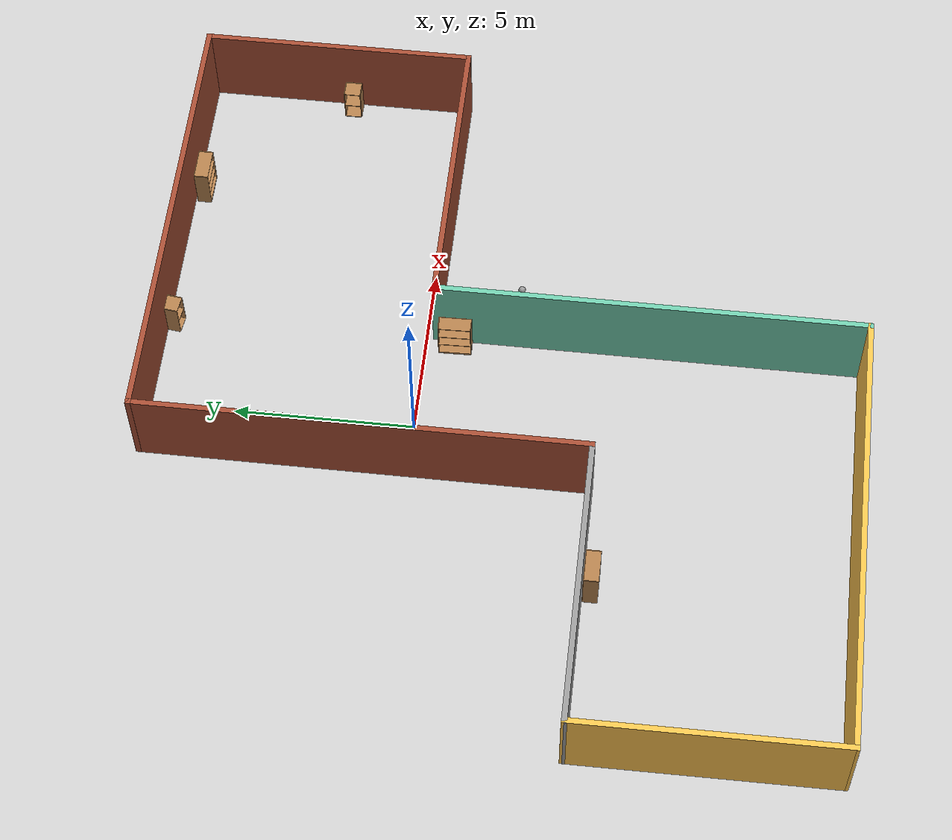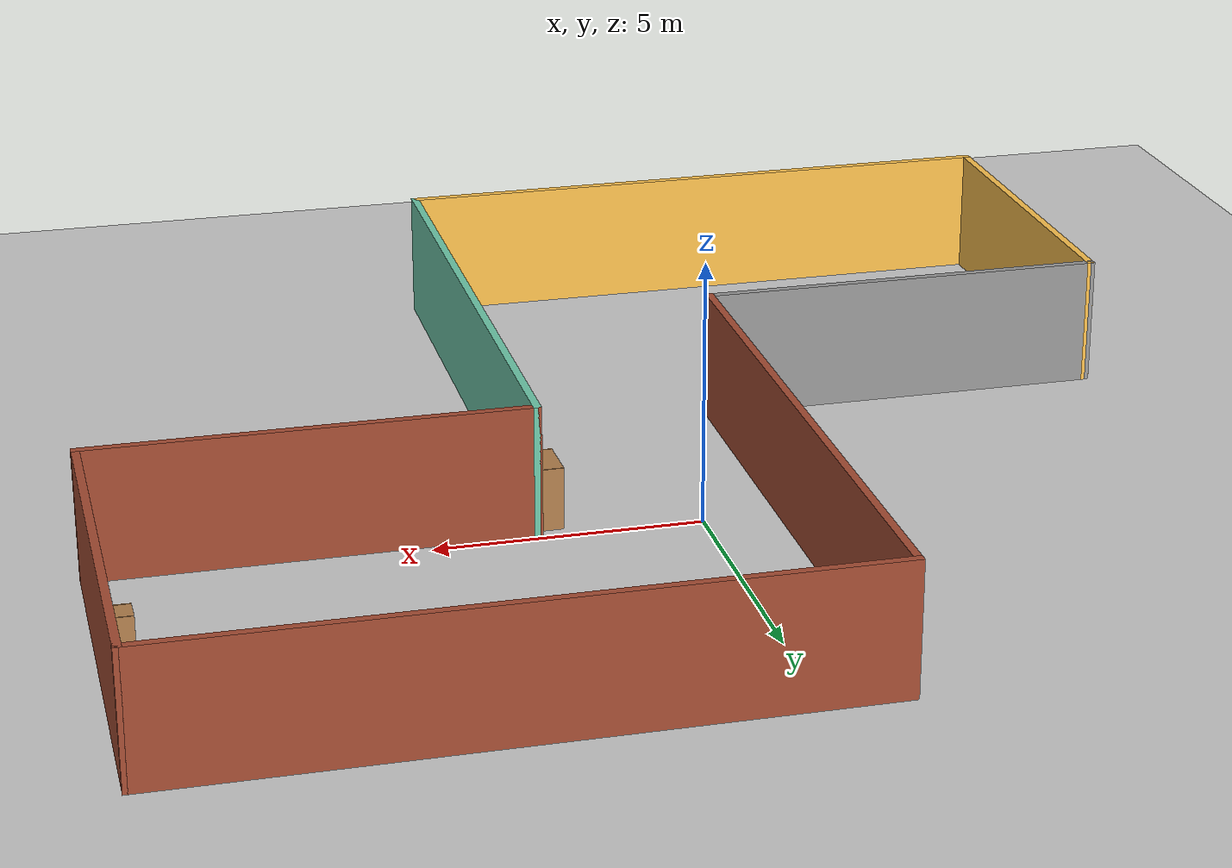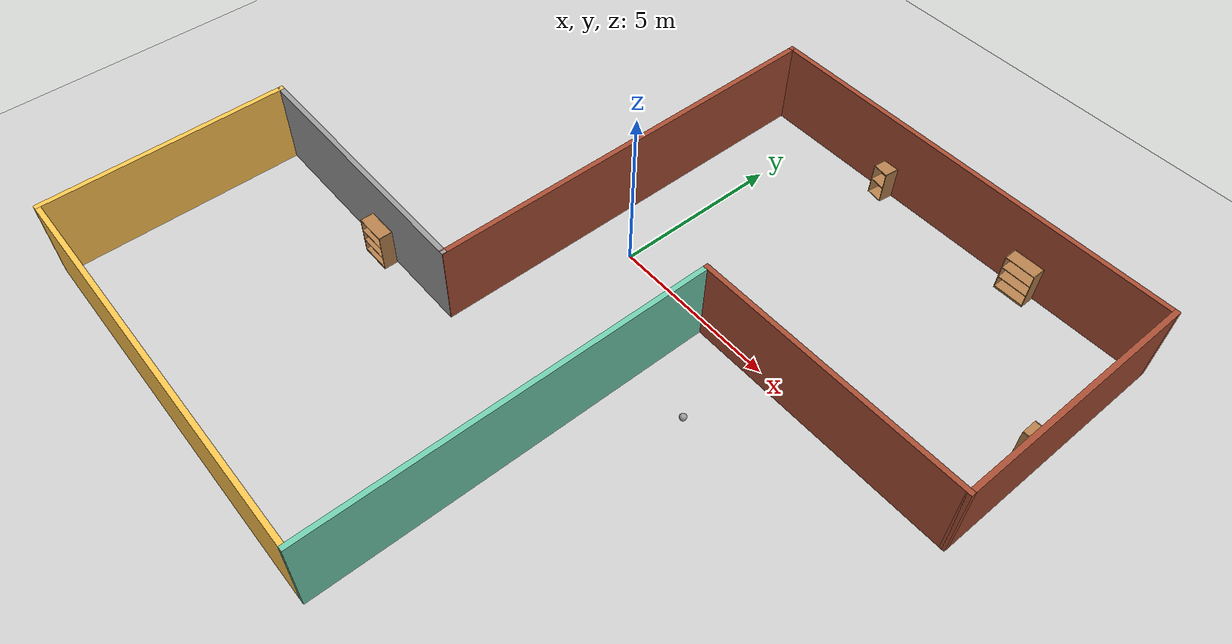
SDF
<sdf version="1.6">
 <world name="default">
  <plugin name="welcome_message" filename="libwelcome_message.so"/>
  <light name="sun" type="directional">
   <pose>0 0 10 0 -0 0</pose>
   <diffuse>0.8 0.8 0.8 1</diffuse>
   <specular>0.2 0.2 0.2 1</specular>
   <attenuation>
    <range>1000</range>
    <constant>0.9</constant>
    <linear>0.01</linear>
    <quadratic>0.001</quadratic>
   </attenuation>
   <direction>-0.5 0.1 -0.9</direction>
  </light>
  <model name="ground_plane">
   <static>1</static>
   <link name="link">
    <collision name="collision">
     <geometry><plane><normal>0 0 1</normal><size>100 100</size></plane></geometry>
     <surface>
      <contact><collide_bitmask>65535</collide_bitmask></contact>
      <friction><ode><mu>100</mu><mu2>50</mu2></ode></friction>
     </surface>
    </collision>
    <visual name="visual">
     <cast_shadows>0</cast_shadows>
     <geometry><plane><normal>0 0 1</normal><size>100 100</size></plane></geometry>
     <material>
      <script><uri>file://media/materials/scripts/gazebo.material</uri><name>Gazebo/Grey</name></script>
     </material>
    </visual>
   </link>
  </model>
  <gravity>0 0 -9.8</gravity>
  <magnetic_field>6e-06 2.3e-05 -4.2e-05</magnetic_field>
  <atmosphere type="adiabatic"/>
  <physics name="default_physics" default="0" type="ode">
   <max_step_size>0.001</max_step_size>
   <real_time_factor>1</real_time_factor>
   <real_time_update_rate>1000</real_time_update_rate>
  </physics>
  <scene><ambient>0.4 0.4 0.4 1</ambient><background>0.7 0.7 0.7 1</background><shadows>1</shadows></scene>
  <spherical_coordinates>
   <surface_model>EARTH_WGS84</surface_model>
   <latitude_deg>0</latitude_deg>
   <longitude_deg>0</longitude_deg>
   <elevation>0</elevation>
   <heading_deg>0</heading_deg>
  </spherical_coordinates>
  <model name="Building">
   <pose>0.87968 -2.35565 0 0 -0 0</pose>
   <link name="Wall_1">
    <collision name="Wall_1_Collision">
     <geometry><box><size>8.024 0.15 2.5</size></box></geometry>
     <pose>0 0 1.25 0 -0 0</pose>
    </collision>
    <visual name="Wall_1_Visual">
     <pose>0 0 1.25 0 -0 0</pose>
     <geometry><box><size>8.024 0.15 2.5</size></box></geometry>
     <material>
      <script><uri>file://media/materials/scripts/gazebo.material</uri><name>Gazebo/Grey</name></script>
      <ambient>1 1 1 1</ambient>
     </material>
     <meta><layer>0</layer></meta>
    </visual>
    <pose>-6.30551 -2.59086 0 0 -0 3.14159</pose>
   </link>
   <link name="Wall_2">
    <collision name="Wall_2_Collision">
     <geometry><box><size>7.285 0.15 2.5</size></box></geometry>
     <pose>0 0 1.25 0 -0 0</pose>
    </collision>
    <visual name="Wall_2_Visual">
     <pose>0 0 1.25 0 -0 0</pose>
     <geometry><box><size>7.285 0.15 2.5</size></box></geometry>
     <material>
      <script><uri>file://media/materials/scripts/gazebo.material</uri><name>Gazebo/Grey</name></script>
      <ambient>1 0.764706 0.305882 1</ambient>
     </material>
     <meta><layer>0</layer></meta>
    </visual>
    <pose>-10.2248 -6.15832 0 0 0 -1.56584</pose>
   </link>
   <link name="Wall_3">
    <collision name="Wall_3_Collision">
     <geometry><box><size>12.5 0.15 2.5</size></box></geometry>
     <pose>0 0 1.25 0 -0 0</pose>
    </collision>
    <visual name="Wall_3_Visual">
     <pose>0 0 1.25 0 -0 0</pose>
     <geometry><box><size>12.5 0.15 2.5</size></box></geometry>
     <material>
      <script><uri>file://media/materials/scripts/gazebo.material</uri><name>Gazebo/Grey</name></script>
      <ambient>1 0.764706 0.305882 1</ambient>
     </material>
     <meta><layer>0</layer></meta>
    </visual>
    <pose>-4.03216 -9.72578 0 0 -0 0</pose>
   </link>
   <link name="Wall_4">
    <collision name="Wall_4_Collision">
     <geometry><box><size>12 0.15 2.5</size></box></geometry>
     <pose>0 0 1.25 0 -0 0</pose>
    </collision>
    <visual name="Wall_4_Visual">
     <pose>0 0 1.25 0 -0 0</pose>
     <geometry><box><size>12 0.15 2.5</size></box></geometry>
     <material>
      <script><uri>file://media/materials/scripts/gazebo.material</uri><name>Gazebo/Grey</name></script>
      <ambient>0.435294 0.796078 0.67451 1</ambient>
     </material>
     <meta><layer>0</layer></meta>
    </visual>
    <pose>2.14284 -3.80078 0 0 -0 1.5708</pose>
   </link>
   <link name="Wall_5">
    <collision name="Wall_5_Collision">
     <geometry><box><size>8.25 0.15 2.5</size></box></geometry>
     <pose>0 0 1.25 0 -0 0</pose>
    </collision>
    <visual name="Wall_5_Visual">
     <pose>0 0 1.25 0 -0 0</pose>
     <geometry><box><size>8.25 0.15 2.5</size></box></geometry>
     <material>
      <script><uri>file://media/materials/scripts/gazebo.material</uri><name>Gazebo/Bricks</name></script>
      <ambient>1 1 1 1</ambient>
     </material>
     <meta><layer>0</layer></meta>
    </visual>
    <pose>6.19284 2.12422 0 0 -0 0</pose>
   </link>
   <link name="Wall_6">
    <collision name="Wall_6_Collision">
     <geometry><box><size>7.75 0.15 2.5</size></box></geometry>
     <pose>0 0 1.25 0 -0 0</pose>
    </collision>
    <visual name="Wall_6_Visual">
     <pose>0 0 1.25 0 -0 0</pose>
     <geometry><box><size>7.75 0.15 2.5</size></box></geometry>
     <material>
      <script><uri>file://media/materials/scripts/gazebo.material</uri><name>Gazebo/Bricks</name></script>
      <ambient>1 0.764706 0.305882 1</ambient>
     </material>
     <meta><layer>0</layer></meta>
    </visual>
    <pose>10.2428 5.92422 0 0 -0 1.5708</pose>
   </link>
   <link name="Wall_7">
    <collision name="Wall_7_Collision">
     <geometry><box><size>12.7504 0.15 2.5</size></box></geometry>
     <pose>0 0 1.25 0 -0 0</pose>
    </collision>
    <visual name="Wall_7_Visual">
     <pose>0 0 1.25 0 -0 0</pose>
     <geometry><box><size>12.7504 0.15 2.5</size></box></geometry>
     <material>
      <script><uri>file://media/materials/scripts/gazebo.material</uri><name>Gazebo/Bricks</name></script>
      <ambient>1 1 1 1</ambient>
     </material>
     <meta><layer>0</layer></meta>
    </visual>
    <pose>3.94267 9.72518 0 0 -0 3.14144</pose>
   </link>
   <link name="Wall_8">
    <collision name="Wall_8_Collision">
     <geometry><box><size>12.462 0.15 2.5</size></box></geometry>
     <pose>0 0 1.25 0 -0 0</pose>
    </collision>
    <visual name="Wall_8_Visual">
     <pose>0 0 1.25 0 -0 0</pose>
     <geometry><box><size>12.462 0.15 2.5</size></box></geometry>
     <material>
      <script><uri>file://media/materials/scripts/gazebo.material</uri><name>Gazebo/Bricks</name></script>
      <ambient>1 1 1 1</ambient>
     </material>
     <meta><layer>0</layer></meta>
    </visual>
    <pose>-2.35751 3.57013 0 0 0 -1.5708</pose>
   </link>
   <static>1</static>
  </model>
  <model name="bookshelf">
   <static>1</static>
   <link name="link">
    <inertial><mass>1</mass></inertial>
    <collision name="back">
     <pose>0 0.005 0.6 0 -0 0</pose>
     <geometry><box><size>0.9 0.01 1.2</size></box></geometry>
    </collision>
    <visual name="visual1">
     <pose>0 0.005 0.6 0 -0 0</pose>
     <geometry><box><size>0.9 0.01 1.2</size></box></geometry>
     <material>
      <script><uri>file://media/materials/scripts/gazebo.material</uri><name>Gazebo/Wood</name></script>
     </material>
    </visual>
    <collision name="left_side">
     <pose>0.45 -0.195 0.6 0 -0 0</pose>
     <geometry><box><size>0.02 0.4 1.2</size></box></geometry>
    </collision>
    <visual name="visual2">
     <pose>0.45 -0.195 0.6 0 -0 0</pose>
     <geometry><box><size>0.02 0.4 1.2</size></box></geometry>
     <material>
      <script><uri>file://media/materials/scripts/gazebo.material</uri><name>Gazebo/Wood</name></script>
     </material>
    </visual>
    <collision name="right_side">
     <pose>-0.45 -0.195 0.6 0 -0 0</pose>
     <geometry><box><size>0.02 0.4 1.2</size></box></geometry>
    </collision>
    <visual name="visual3">
     <pose>-0.45 -0.195 0.6 0 -0 0</pose>
     <geometry><box><size>0.02 0.4 1.2</size></box></geometry>
     <material>
      <script><uri>file://media/materials/scripts/gazebo.material</uri><name>Gazebo/Wood</name></script>
     </material>
    </visual>
    <collision name="bottom">
     <pose>0 -0.195 0.03 0 -0 0</pose>
     <geometry><box><size>0.88 0.4 0.06</size></box></geometry>
    </collision>
    <visual name="visual4">
     <pose>0 -0.195 0.03 0 -0 0</pose>
     <geometry><box><size>0.88 0.4 0.06</size></box></geometry>
     <material>
      <script><uri>file://media/materials/scripts/gazebo.material</uri><name>Gazebo/Wood</name></script>
     </material>
    </visual>
    <collision name="top">
     <pose>0 -0.195 1.19 0 -0 0</pose>
     <geometry><box><size>0.88 0.4 0.02</size></box></geometry>
    </collision>
    <visual name="visual5">
     <pose>0 -0.195 1.19 0 -0 0</pose>
     <geometry><box><size>0.88 0.4 0.02</size></box></geometry>
     <material>
      <script><uri>file://media/materials/scripts/gazebo.material</uri><name>Gazebo/Wood</name></script>
     </material>
    </visual>
    <collision name="low_shelf">
     <pose>0 -0.195 0.43 0 -0 0</pose>
     <geometry><box><size>0.88 0.4 0.02</size></box></geometry>
    </collision>
    <visual name="visual6">
     <pose>0 -0.195 0.43 0 -0 0</pose>
     <geometry><box><size>0.88 0.4 0.02</size></box></geometry>
     <material>
      <script><uri>file://media/materials/scripts/gazebo.material</uri><name>Gazebo/Wood</name></script>
     </material>
    </visual>
    <collision name="high_shelf">
     <pose>0 -0.195 0.8 0 -0 0</pose>
     <geometry><box><size>0.88 0.4 0.02</size></box></geometry>
    </collision>
    <visual name="visual7">
     <pose>0 -0.195 0.8 0 -0 0</pose>
     <geometry><box><size>0.88 0.4 0.02</size></box></geometry>
     <material>
      <script><uri>file://media/materials/scripts/gazebo.material</uri><name>Gazebo/Wood</name></script>
     </material>
    </visual>
   </link>
   <pose>-4.36599 -5.04739 0 0 -0 0</pose>
  </model>
  <model name="my_ball">
   <link name="link_0">
    <inertial>
     <mass>1</mass>
     <inertia><ixx>0.1</ixx><ixy>0</ixy><ixz>0</ixz><iyy>0.1</iyy><iyz>0</iyz><izz>0.1</izz></inertia>
    </inertial>
    <visual name="visual">
     <geometry><sphere><radius>0.1</radius></sphere></geometry>
     <material>
      <lighting>1</lighting>
      <script><uri>file://media/materials/scripts/gazebo.material</uri><name>Gazebo/Grey</name></script>
      <shader type="pixel"><normal_map>__default__</normal_map></shader>
      <ambient>1 1 1 1</ambient>
      <diffuse>1 1 1 1</diffuse>
      <specular>1 1 1 1</specular>
      <emissive>1 1 1 1</emissive>
     </material>
    </visual>
    <collision name="collision">
     <geometry><sphere><radius>0.1</radius></sphere></geometry>
     <surface>
      <friction>
       <ode><mu>1</mu><mu2>1</mu2><fdir1>0 0 0</fdir1><slip1>0</slip1><slip2>0</slip2></ode>
       <torsional>
        <coefficient>1</coefficient>
        <patch_radius>0</patch_radius>
        <surface_radius>0</surface_radius>
        <use_patch_radius>1</use_patch_radius>
        <ode><slip>0</slip></ode>
       </torsional>
      </friction>
      <bounce><restitution_coefficient>0</restitution_coefficient><threshold>1e+06</threshold></bounce>
      <contact>
       <collide_without_contact>0</collide_without_contact>
       <collide_without_contact_bitmask>1</collide_without_contact_bitmask>
       <collide_bitmask>1</collide_bitmask>
       <ode>
        <soft_cfm>0</soft_cfm>
        <soft_erp>0.2</soft_erp>
        <kp>1e+13</kp>
        <kd>1</kd>
        <max_vel>0.01</max_vel>
        <min_depth>0</min_depth>
       </ode>
       <bullet>
        <split_impulse>1</split_impulse>
        <split_impulse_penetration_threshold>-0.01</split_impulse_penetration_threshold>
        <soft_cfm>0</soft_cfm>
        <soft_erp>0.2</soft_erp>
        <kp>1e+13</kp>
        <kd>1</kd>
       </bullet>
      </contact>
     </surface>
    </collision>
   </link>
   <static>0</static>
   <pose>4.81134 -2.46501 0.1 0 -0 0</pose>
  </model>
  <model name="cabinet">
   <static>1</static>
   <link name="cabinet_bottom_plate">
    <inertial>
     <pose>0 0 -1 0 -0 0</pose>
     <inertia><ixx>2.05</ixx><ixy>0</ixy><ixz>0</ixz><iyy>2.05</iyy><iyz>0</iyz><izz>2.05</izz></inertia>
     <mass>25</mass>
    </inertial>
    <collision name="cabinet_bottom_plate_geom">
     <pose>0 0 0.01 0 -0 0</pose>
     <geometry><box><size>0.45 0.45 0.02</size></box></geometry>
    </collision>
    <visual name="cabinet_bottom_plate_geom_visual">
     <pose>0 0 0.01 0 -0 0</pose>
     <geometry><box><size>0.45 0.45 0.02</size></box></geometry>
     <material>
      <script><uri>file://media/materials/scripts/gazebo.material</uri><name>Gazebo/Wood</name></script>
     </material>
    </visual>
    <collision name="cabinet_bottom_plate_geom_cabinet_back_plate">
     <pose>0.235 0 0.51 0 -0 0</pose>
     <geometry><box><size>0.02 0.45 1.02</size></box></geometry>
    </collision>
    <visual name="cabinet_bottom_plate_geom_cabinet_back_plate_visual">
     <pose>0.235 0 0.51 0 -0 0</pose>
     <geometry><box><size>0.02 0.45 1.02</size></box></geometry>
     <material>
      <script><uri>file://media/materials/scripts/gazebo.material</uri><name>Gazebo/Wood</name></script>
     </material>
    </visual>
    <collision name="cabinet_bottom_plate_geom_cabinet_left_plate">
     <pose>0 0.235 0.51 0 -0 0</pose>
     <geometry><box><size>0.45 0.02 1.02</size></box></geometry>
    </collision>
    <visual name="cabinet_bottom_plate_geom_cabinet_left_plate_visual">
     <pose>0 0.235 0.51 0 -0 0</pose>
     <geometry><box><size>0.45 0.02 1.02</size></box></geometry>
     <material>
      <script><uri>file://media/materials/scripts/gazebo.material</uri><name>Gazebo/Wood</name></script>
     </material>
    </visual>
    <collision name="cabinet_bottom_plate_geom_cabinet_middle_plate">
     <pose>0 0 0.51 0 -0 0</pose>
     <geometry><box><size>0.45 0.45 0.02</size></box></geometry>
    </collision>
    <visual name="cabinet_bottom_plate_geom_cabinet_middle_plate_visual">
     <pose>0 0 0.51 0 -0 0</pose>
     <geometry><box><size>0.45 0.45 0.02</size></box></geometry>
     <material>
      <script><uri>file://media/materials/scripts/gazebo.material</uri><name>Gazebo/Wood</name></script>
     </material>
    </visual>
    <collision name="cabinet_bottom_plate_geom_cabinet_right_plate">
     <pose>0 -0.235 0.51 0 -0 0</pose>
     <geometry><box><size>0.45 0.02 1.02</size></box></geometry>
    </collision>
    <visual name="cabinet_bottom_plate_geom_cabinet_right_plate_visual">
     <pose>0 -0.235 0.51 0 -0 0</pose>
     <geometry><box><size>0.45 0.02 1.02</size></box></geometry>
     <material>
      <script><uri>file://media/materials/scripts/gazebo.material</uri><name>Gazebo/Wood</name></script>
     </material>
    </visual>
    <collision name="cabinet_bottom_plate_geom_cabinet_top_plate">
     <pose>0 0 1.01 0 -0 0</pose>
     <geometry><box><size>0.45 0.45 0.02</size></box></geometry>
    </collision>
    <visual name="cabinet_bottom_plate_geom_cabinet_top_plate_visual">
     <pose>0 0 1.01 0 -0 0</pose>
     <geometry><box><size>0.45 0.45 0.02</size></box></geometry>
     <material>
      <script><uri>file://media/materials/scripts/gazebo.material</uri><name>Gazebo/Wood</name></script>
     </material>
    </visual>
   </link>
   <pose>2.69816 7.12258 0 0 -0 1.44106</pose>
  </model>
  <model name="cabinet_0">
   <static>1</static>
   <link name="cabinet_bottom_plate">
    <inertial>
     <pose>0 0 -1 0 -0 0</pose>
     <inertia><ixx>2.05</ixx><ixy>0</ixy><ixz>0</ixz><iyy>2.05</iyy><iyz>0</iyz><izz>2.05</izz></inertia>
     <mass>25</mass>
    </inertial>
    <collision name="cabinet_bottom_plate_geom">
     <pose>0 0 0.01 0 -0 0</pose>
     <geometry><box><size>0.45 0.45 0.02</size></box></geometry>
    </collision>
    <visual name="cabinet_bottom_plate_geom_visual">
     <pose>0 0 0.01 0 -0 0</pose>
     <geometry><box><size>0.45 0.45 0.02</size></box></geometry>
     <material>
      <script><uri>file://media/materials/scripts/gazebo.material</uri><name>Gazebo/Wood</name></script>
     </material>
    </visual>
    <collision name="cabinet_bottom_plate_geom_cabinet_back_plate">
     <pose>0.235 0 0.51 0 -0 0</pose>
     <geometry><box><size>0.02 0.45 1.02</size></box></geometry>
    </collision>
    <visual name="cabinet_bottom_plate_geom_cabinet_back_plate_visual">
     <pose>0.235 0 0.51 0 -0 0</pose>
     <geometry><box><size>0.02 0.45 1.02</size></box></geometry>
     <material>
      <script><uri>file://media/materials/scripts/gazebo.material</uri><name>Gazebo/Wood</name></script>
     </material>
    </visual>
    <collision name="cabinet_bottom_plate_geom_cabinet_left_plate">
     <pose>0 0.235 0.51 0 -0 0</pose>
     <geometry><box><size>0.45 0.02 1.02</size></box></geometry>
    </collision>
    <visual name="cabinet_bottom_plate_geom_cabinet_left_plate_visual">
     <pose>0 0.235 0.51 0 -0 0</pose>
     <geometry><box><size>0.45 0.02 1.02</size></box></geometry>
     <material>
      <script><uri>file://media/materials/scripts/gazebo.material</uri><name>Gazebo/Wood</name></script>
     </material>
    </visual>
    <collision name="cabinet_bottom_plate_geom_cabinet_middle_plate">
     <pose>0 0 0.51 0 -0 0</pose>
     <geometry><box><size>0.45 0.45 0.02</size></box></geometry>
    </collision>
    <visual name="cabinet_bottom_plate_geom_cabinet_middle_plate_visual">
     <pose>0 0 0.51 0 -0 0</pose>
     <geometry><box><size>0.45 0.45 0.02</size></box></geometry>
     <material>
      <script><uri>file://media/materials/scripts/gazebo.material</uri><name>Gazebo/Wood</name></script>
     </material>
    </visual>
    <collision name="cabinet_bottom_plate_geom_cabinet_right_plate">
     <pose>0 -0.235 0.51 0 -0 0</pose>
     <geometry><box><size>0.45 0.02 1.02</size></box></geometry>
    </collision>
    <visual name="cabinet_bottom_plate_geom_cabinet_right_plate_visual">
     <pose>0 -0.235 0.51 0 -0 0</pose>
     <geometry><box><size>0.45 0.02 1.02</size></box></geometry>
     <material>
      <script><uri>file://media/materials/scripts/gazebo.material</uri><name>Gazebo/Wood</name></script>
     </material>
    </visual>
    <collision name="cabinet_bottom_plate_geom_cabinet_top_plate">
     <pose>0 0 1.01 0 -0 0</pose>
     <geometry><box><size>0.45 0.45 0.02</size></box></geometry>
    </collision>
    <visual name="cabinet_bottom_plate_geom_cabinet_top_plate_visual">
     <pose>0 0 1.01 0 -0 0</pose>
     <geometry><box><size>0.45 0.45 0.02</size></box></geometry>
     <material>
      <script><uri>file://media/materials/scripts/gazebo.material</uri><name>Gazebo/Wood</name></script>
     </material>
    </visual>
   </link>
   <pose>10.7833 3.1689 0 0 -0 0</pose>
  </model>
  <model name="bookshelf_0">
   <static>1</static>
   <link name="link">
    <inertial><mass>1</mass></inertial>
    <collision name="back">
     <pose>0 0.005 0.6 0 -0 0</pose>
     <geometry><box><size>0.9 0.01 1.2</size></box></geometry>
    </collision>
    <visual name="visual1">
     <pose>0 0.005 0.6 0 -0 0</pose>
     <geometry><box><size>0.9 0.01 1.2</size></box></geometry>
     <material>
      <script><uri>file://media/materials/scripts/gazebo.material</uri><name>Gazebo/Wood</name></script>
     </material>
    </visual>
    <collision name="left_side">
     <pose>0.45 -0.195 0.6 0 -0 0</pose>
     <geometry><box><size>0.02 0.4 1.2</size></box></geometry>
    </collision>
    <visual name="visual2">
     <pose>0.45 -0.195 0.6 0 -0 0</pose>
     <geometry><box><size>0.02 0.4 1.2</size></box></geometry>
     <material>
      <script><uri>file://media/materials/scripts/gazebo.material</uri><name>Gazebo/Wood</name></script>
     </material>
    </visual>
    <collision name="right_side">
     <pose>-0.45 -0.195 0.6 0 -0 0</pose>
     <geometry><box><size>0.02 0.4 1.2</size></box></geometry>
    </collision>
    <visual name="visual3">
     <pose>-0.45 -0.195 0.6 0 -0 0</pose>
     <geometry><box><size>0.02 0.4 1.2</size></box></geometry>
     <material>
      <script><uri>file://media/materials/scripts/gazebo.material</uri><name>Gazebo/Wood</name></script>
     </material>
    </visual>
    <collision name="bottom">
     <pose>0 -0.195 0.03 0 -0 0</pose>
     <geometry><box><size>0.88 0.4 0.06</size></box></geometry>
    </collision>
    <visual name="visual4">
     <pose>0 -0.195 0.03 0 -0 0</pose>
     <geometry><box><size>0.88 0.4 0.06</size></box></geometry>
     <material>
      <script><uri>file://media/materials/scripts/gazebo.material</uri><name>Gazebo/Wood</name></script>
     </material>
    </visual>
    <collision name="top">
     <pose>0 -0.195 1.19 0 -0 0</pose>
     <geometry><box><size>0.88 0.4 0.02</size></box></geometry>
    </collision>
    <visual name="visual5">
     <pose>0 -0.195 1.19 0 -0 0</pose>
     <geometry><box><size>0.88 0.4 0.02</size></box></geometry>
     <material>
      <script><uri>file://media/materials/scripts/gazebo.material</uri><name>Gazebo/Wood</name></script>
     </material>
    </visual>
    <collision name="low_shelf">
     <pose>0 -0.195 0.43 0 -0 0</pose>
     <geometry><box><size>0.88 0.4 0.02</size></box></geometry>
    </collision>
    <visual name="visual6">
     <pose>0 -0.195 0.43 0 -0 0</pose>
     <geometry><box><size>0.88 0.4 0.02</size></box></geometry>
     <material>
      <script><uri>file://media/materials/scripts/gazebo.material</uri><name>Gazebo/Wood</name></script>
     </material>
    </visual>
    <collision name="high_shelf">
     <pose>0 -0.195 0.8 0 -0 0</pose>
     <geometry><box><size>0.88 0.4 0.02</size></box></geometry>
    </collision>
    <visual name="visual7">
     <pose>0 -0.195 0.8 0 -0 0</pose>
     <geometry><box><size>0.88 0.4 0.02</size></box></geometry>
     <material>
      <script><uri>file://media/materials/scripts/gazebo.material</uri><name>Gazebo/Wood</name></script>
     </material>
    </visual>
   </link>
   <pose>7.43932 7.23042 0 0 -0 0</pose>
  </model>
  <model name="bookshelf_1">
   <static>1</static>
   <link name="link">
    <inertial><mass>1</mass></inertial>
    <collision name="back">
     <pose>0 0.005 0.6 0 -0 0</pose>
     <geometry><box><size>0.9 0.01 1.2</size></box></geometry>
    </collision>
    <visual name="visual1">
     <pose>0 0.005 0.6 0 -0 0</pose>
     <geometry><box><size>0.9 0.01 1.2</size></box></geometry>
     <material>
      <script><uri>file://media/materials/scripts/gazebo.material</uri><name>Gazebo/Wood</name></script>
     </material>
    </visual>
    <collision name="left_side">
     <pose>0.45 -0.195 0.6 0 -0 0</pose>
     <geometry><box><size>0.02 0.4 1.2</size></box></geometry>
    </collision>
    <visual name="visual2">
     <pose>0.45 -0.195 0.6 0 -0 0</pose>
     <geometry><box><size>0.02 0.4 1.2</size></box></geometry>
     <material>
      <script><uri>file://media/materials/scripts/gazebo.material</uri><name>Gazebo/Wood</name></script>
     </material>
    </visual>
    <collision name="right_side">
     <pose>-0.45 -0.195 0.6 0 -0 0</pose>
     <geometry><box><size>0.02 0.4 1.2</size></box></geometry>
    </collision>
    <visual name="visual3">
     <pose>-0.45 -0.195 0.6 0 -0 0</pose>
     <geometry><box><size>0.02 0.4 1.2</size></box></geometry>
     <material>
      <script><uri>file://media/materials/scripts/gazebo.material</uri><name>Gazebo/Wood</name></script>
     </material>
    </visual>
    <collision name="bottom">
     <pose>0 -0.195 0.03 0 -0 0</pose>
     <geometry><box><size>0.88 0.4 0.06</size></box></geometry>
    </collision>
    <visual name="visual4">
     <pose>0 -0.195 0.03 0 -0 0</pose>
     <geometry><box><size>0.88 0.4 0.06</size></box></geometry>
     <material>
      <script><uri>file://media/materials/scripts/gazebo.material</uri><name>Gazebo/Wood</name></script>
     </material>
    </visual>
    <collision name="top">
     <pose>0 -0.195 1.19 0 -0 0</pose>
     <geometry><box><size>0.88 0.4 0.02</size></box></geometry>
    </collision>
    <visual name="visual5">
     <pose>0 -0.195 1.19 0 -0 0</pose>
     <geometry><box><size>0.88 0.4 0.02</size></box></geometry>
     <material>
      <script><uri>file://media/materials/scripts/gazebo.material</uri><name>Gazebo/Wood</name></script>
     </material>
    </visual>
    <collision name="low_shelf">
     <pose>0 -0.195 0.43 0 -0 0</pose>
     <geometry><box><size>0.88 0.4 0.02</size></box></geometry>
    </collision>
    <visual name="visual6">
     <pose>0 -0.195 0.43 0 -0 0</pose>
     <geometry><box><size>0.88 0.4 0.02</size></box></geometry>
     <material>
      <script><uri>file://media/materials/scripts/gazebo.material</uri><name>Gazebo/Wood</name></script>
     </material>
    </visual>
    <collision name="high_shelf">
     <pose>0 -0.195 0.8 0 -0 0</pose>
     <geometry><box><size>0.88 0.4 0.02</size></box></geometry>
    </collision>
    <visual name="visual7">
     <pose>0 -0.195 0.8 0 -0 0</pose>
     <geometry><box><size>0.88 0.4 0.02</size></box></geometry>
     <material>
      <script><uri>file://media/materials/scripts/gazebo.material</uri><name>Gazebo/Wood</name></script>
     </material>
    </visual>
   </link>
   <pose>2.91312 -0.804282 0 0 0 -1.55147</pose>
  </model>
 </world>
</sdf>
